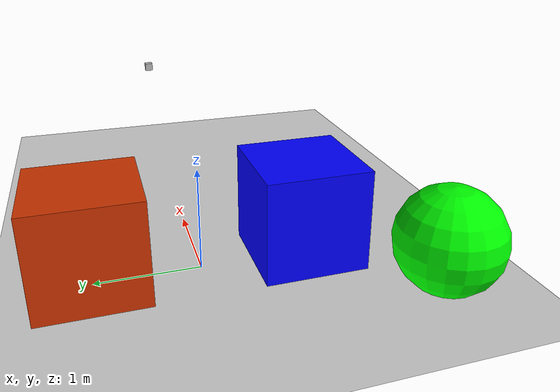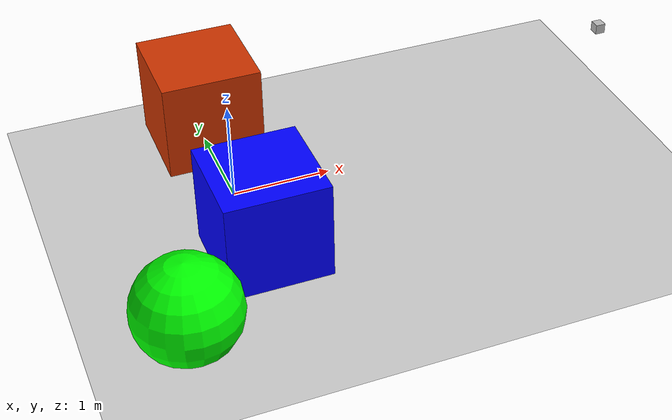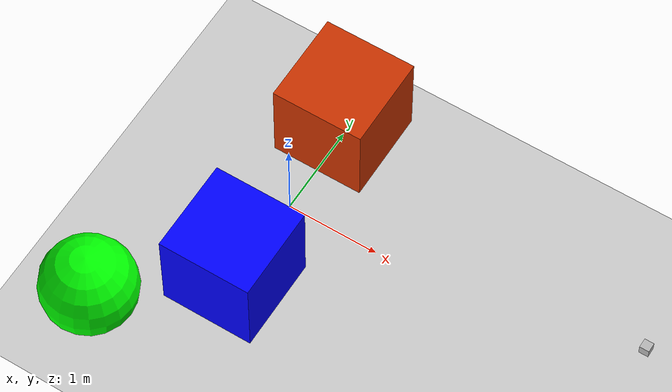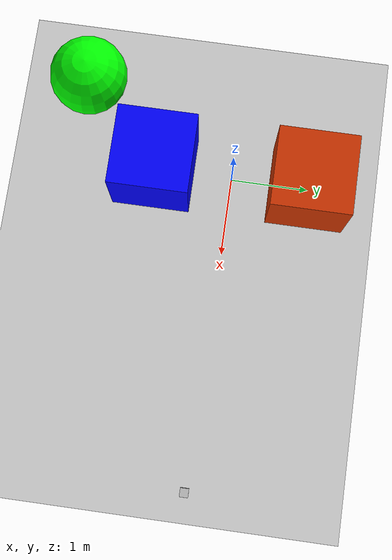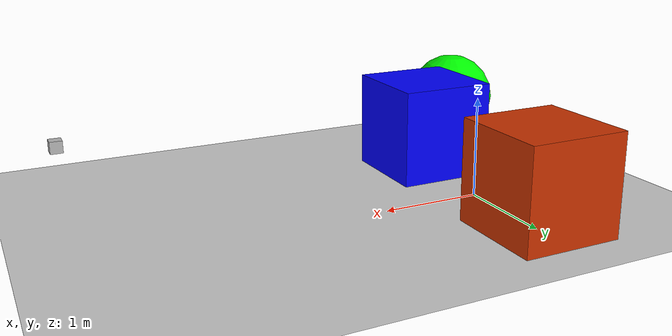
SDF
<sdf version="1.10">
 <world name="boundingbox_sensor">
  <plugin name="gz::sim::systems::Physics" filename="gz-sim-physics-system"/>
  <plugin name="gz::sim::systems::UserCommands" filename="gz-sim-user-commands-system"/>
  <plugin name="gz::sim::systems::SceneBroadcaster" filename="gz-sim-scene-broadcaster-system"/>
  <plugin name="gz::sim::systems::Sensors" filename="gz-sim-sensors-system">
   <render_engine>ogre2</render_engine>
  </plugin>
  <gravity>0 0 -9.8000000000000007</gravity>
  <magnetic_field>5.5644999999999998e-06 2.2875799999999999e-05 -4.2388400000000002e-05</magnetic_field>
  <atmosphere type="adiabatic"/>
  <physics type="ode">
   <max_step_size>0.001</max_step_size>
   <real_time_factor>1</real_time_factor>
   <real_time_update_rate>1000</real_time_update_rate>
  </physics>
  <scene>
   <ambient>0.400000006 0.400000006 0.400000006 1</ambient>
   <background>0.699999988 0.699999988 0.699999988 1</background>
   <shadows>true</shadows>
  </scene>
  <model name="ground_plane">
   <static>true</static>
   <link name="link">
    <collision name="collision">
     <geometry><plane><normal>0 0 1</normal><size>100 100</size></plane></geometry>
    </collision>
    <visual name="visual">
     <geometry><plane><normal>0 0 1</normal><size>100 100</size></plane></geometry>
     <material>
      <ambient>0.800000012 0.800000012 0.800000012 1</ambient>
      <diffuse>0.800000012 0.800000012 0.800000012 1</diffuse>
      <specular>0.800000012 0.800000012 0.800000012 1</specular>
     </material>
    </visual>
    <inertial>
     <mass>1</mass>
     <inertia><ixx>1</ixx><ixy>0</ixy><ixz>0</ixz><iyy>1</iyy><iyz>0</iyz><izz>1</izz></inertia>
    </inertial>
   </link>
  </model>
  <model name="box">
   <pose>0 -1 0.5 0 0 0</pose>
   <link name="box_link">
    <inertial>
     <inertia><ixx>1</ixx><ixy>0</ixy><ixz>0</ixz><iyy>1</iyy><iyz>0</iyz><izz>1</izz></inertia>
     <mass>1</mass>
    </inertial>
    <collision name="box_collision"><geometry><box><size>1 1 1</size></box></geometry></collision>
    <visual name="box_visual">
     <geometry><box><size>1 1 1</size></box></geometry>
     <material>
      <ambient>0 0 0.5 1</ambient>
      <diffuse>0 0 1 1</diffuse>
      <specular>0 0 0.300000012 1</specular>
     </material>
     <plugin name="gz::sim::systems::Label" filename="gz-sim-label-system"><label>10</label></plugin>
    </visual>
   </link>
   <static>false</static>
  </model>
  <model name="box2">
   <plugin name="gz::sim::systems::Label" filename="gz-sim-label-system"><label>10</label></plugin>
   <pose>0 1 0.5 0 0 0</pose>
   <link name="box_link2">
    <inertial>
     <inertia><ixx>1</ixx><ixy>0</ixy><ixz>0</ixz><iyy>1</iyy><iyz>0</iyz><izz>1</izz></inertia>
     <mass>1</mass>
    </inertial>
    <collision name="box_collision2"><geometry><box><size>1 1 1</size></box></geometry></collision>
    <visual name="box_visual2">
     <geometry><box><size>1 1 1</size></box></geometry>
     <material>
      <ambient>1 0 0 1</ambient>
      <diffuse>0.800000012 0.200000003 0 1</diffuse>
      <specular>0.800000012 0 0 1</specular>
     </material>
    </visual>
   </link>
   <static>false</static>
  </model>
  <model name="sphere">
   <static>true</static>
   <pose>-1 -2 0.5 0 0 0</pose>
   <link name="sphere_link">
    <collision name="sphere_collision"><geometry><sphere><radius>0.5</radius></sphere></geometry></collision>
    <visual name="sphere_visual">
     <geometry><sphere><radius>0.5</radius></sphere></geometry>
     <material><ambient>0 1 0 1</ambient><diffuse>0 1 0 1</diffuse><specular>0 1 0 1</specular></material>
     <cast_shadows>false</cast_shadows>
    </visual>
    <inertial>
     <mass>1</mass>
     <inertia><ixx>1</ixx><ixy>0</ixy><ixz>0</ixz><iyy>1</iyy><iyz>0</iyz><izz>1</izz></inertia>
    </inertial>
   </link>
   <plugin name="gz::sim::systems::Label" filename="gz-sim-label-system"><label>20</label></plugin>
  </model>
  <model name="boundingbox_camera">
   <pose>4 -6.9388939039072284e-18 1 0 0 3.1400000000000001</pose>
   <link name="link">
    <pose>0.050000000000000003 0.050000000000000003 0.050000000000000003 0 0 0</pose>
    <inertial>
     <mass>0.10000000000000001</mass>
     <inertia>
      <ixx>0.00016666700000000001</ixx>
      <iyy>0.00016666700000000001</iyy>
      <izz>0.00016666700000000001</izz>
      <ixy>0</ixy>
      <ixz>0</ixz>
      <iyz>0</iyz>
     </inertia>
    </inertial>
    <collision name="collision">
     <geometry><box><size>0.10000000000000001 0.10000000000000001 0.10000000000000001</size></box></geometry>
    </collision>
    <visual name="visual">
     <geometry><box><size>0.10000000000000001 0.10000000000000001 0.10000000000000001</size></box></geometry>
    </visual>
    <sensor name="full_2d" type="boundingbox_camera">
     <topic>boxes_full_2d</topic>
     <camera>
      <box_type>full_2d</box_type>
      <horizontal_fov>1.0469999999999999</horizontal_fov>
      <image><width>800</width><height>600</height></image>
      <clip><near>0.10000000000000001</near><far>10</far></clip>
      <save enabled="true"><path>bounding_box_full_2d_data</path></save>
     </camera>
     <always_on>true</always_on>
     <update_rate>30</update_rate>
     <visualize>true</visualize>
    </sensor>
    <sensor name="visible_2d" type="boundingbox_camera">
     <topic>boxes_visible_2d</topic>
     <camera>
      <box_type>visible_2d</box_type>
      <horizontal_fov>1.0469999999999999</horizontal_fov>
      <image><width>800</width><height>600</height></image>
      <clip><near>0.10000000000000001</near><far>10</far></clip>
      <save enabled="true"><path>bounding_box_visible_2d_data</path></save>
     </camera>
     <always_on>true</always_on>
     <update_rate>30</update_rate>
     <visualize>true</visualize>
    </sensor>
    <sensor name="3d" type="boundingbox_camera">
     <topic>boxes_3d</topic>
     <camera>
      <box_type>3d</box_type>
      <horizontal_fov>1.0469999999999999</horizontal_fov>
      <image><width>800</width><height>600</height></image>
      <clip><near>0.10000000000000001</near><far>10</far></clip>
      <save enabled="true"><path>bounding_box_3d_data</path></save>
     </camera>
     <always_on>true</always_on>
     <update_rate>30</update_rate>
     <visualize>true</visualize>
    </sensor>
   </link>
   <static>false</static>
  </model>
  <light name="sun" type="directional">
   <pose>0 0 10 0 0 0</pose>
   <intensity>1</intensity>
   <direction>-0.5 0.10000000000000001 -0.90000000000000002</direction>
   <diffuse>0.800000012 0.800000012 0.800000012 1</diffuse>
   <specular>0.800000012 0.800000012 0.800000012 1</specular>
   <attenuation>
    <range>1000</range>
    <linear>0.01</linear>
    <constant>0.90000000000000002</constant>
    <quadratic>0.001</quadratic>
   </attenuation>
   <spot><inner_angle>0</inner_angle><outer_angle>0</outer_angle><falloff>0</falloff></spot>
  </light>
 </world>
</sdf>
